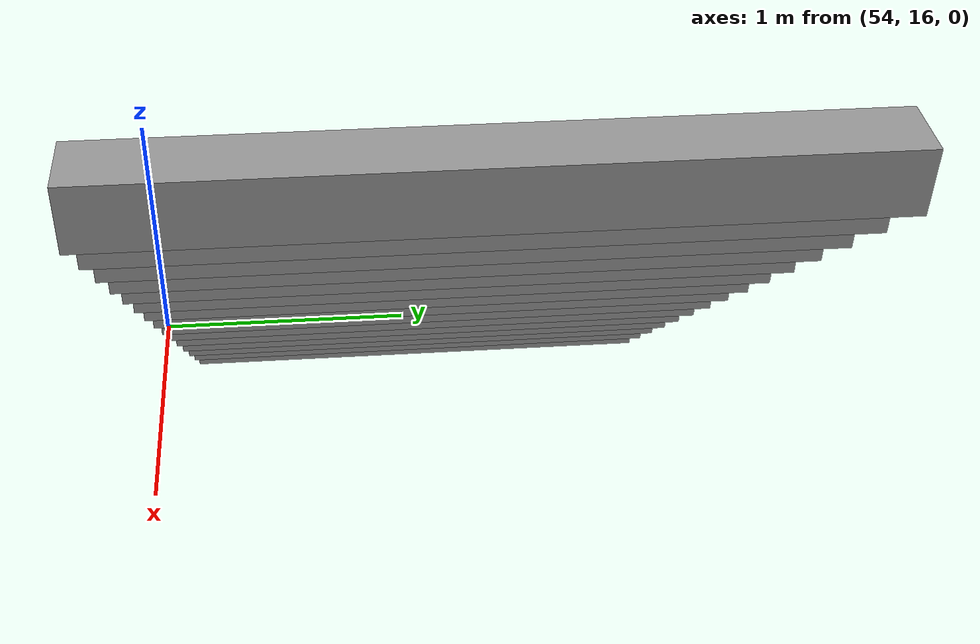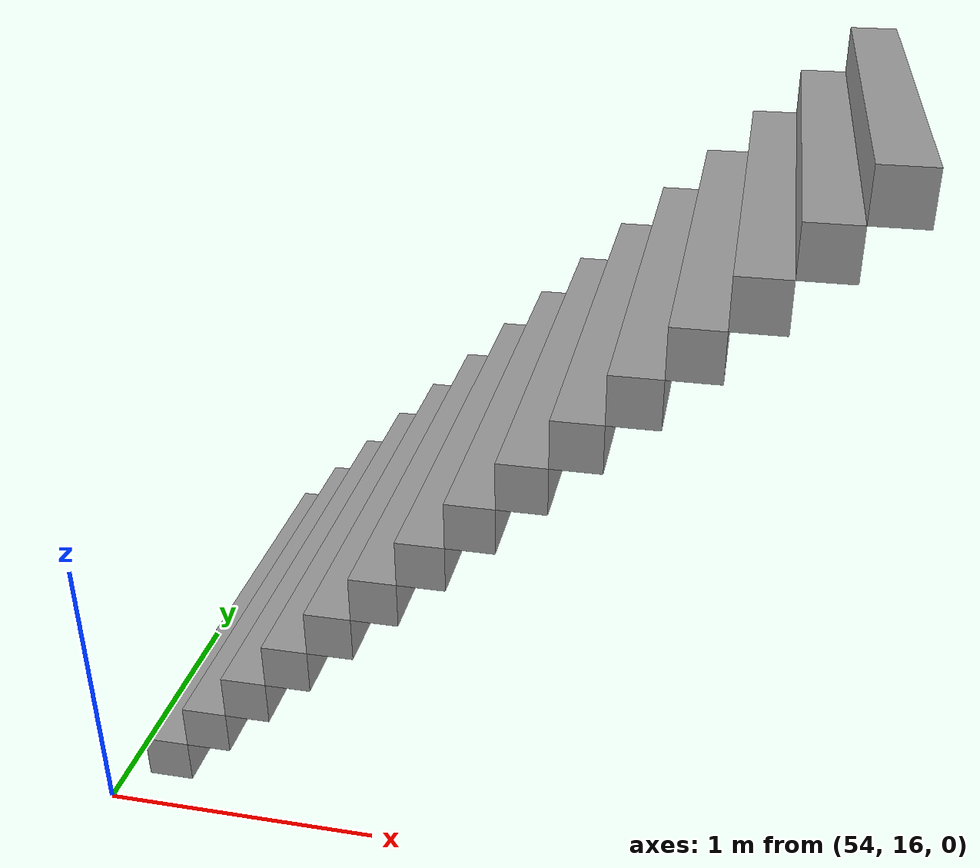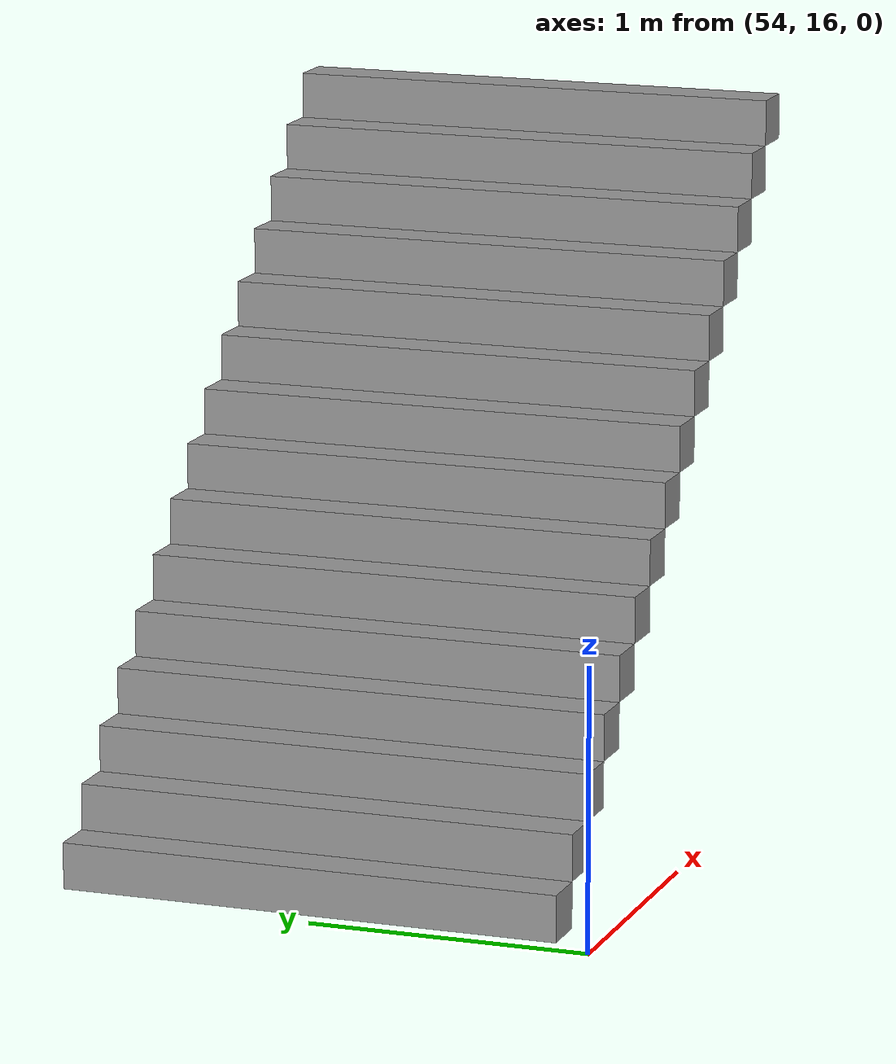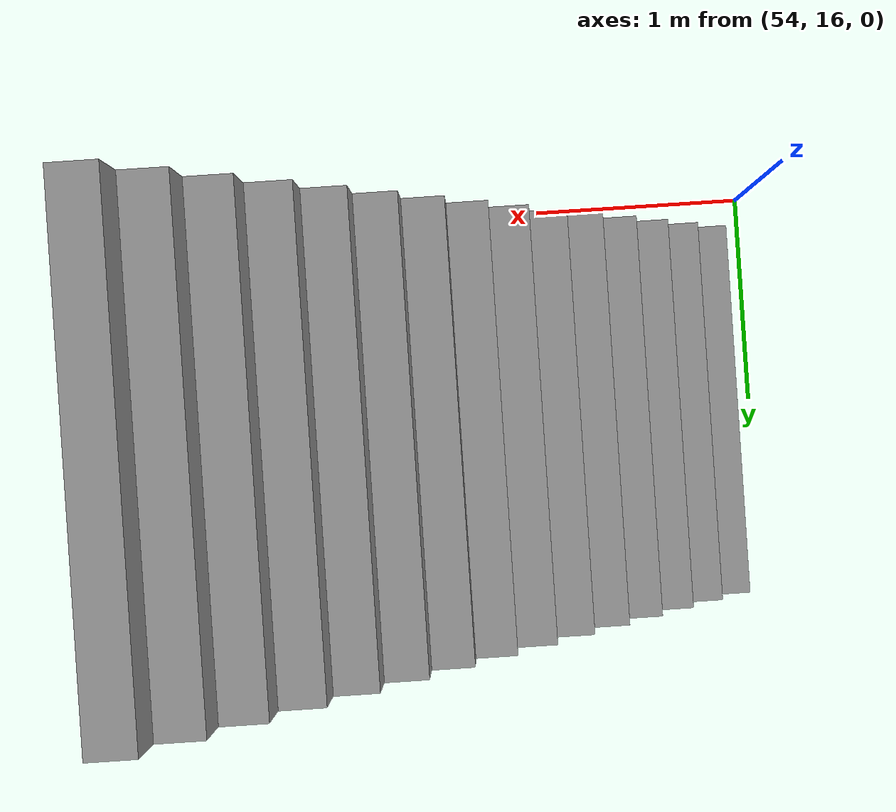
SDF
<sdf version="1.6">
 <model name="draft3">
  <pose>34.2026 -2.81154 0 0 -0 0</pose>
  <link name="Stairs_2">
   <visual name="Stairs_2_Visual_0">
    <pose>19.9679 19.8567 0.083333 0 -0 1.5708</pose>
    <geometry><box><size>1.80606 0.167429 0.166667</size></box></geometry>
    <material>
     <script><uri>file://media/materials/scripts/gazebo.material</uri><name>Gazebo/Grey</name></script>
     <ambient>1 1 1 1</ambient>
    </material>
   </visual>
   <collision name="Stairs_2_Collision_0">
    <geometry><box><size>1.80606 0.167429 0.166667</size></box></geometry>
    <pose>19.9679 19.8567 0.083333 0 -0 1.5708</pose>
   </collision>
   <visual name="Stairs_2_Visual_1">
    <pose>20.1353 19.8567 0.25 0 -0 1.5708</pose>
    <geometry><box><size>1.80606 0.167429 0.166667</size></box></geometry>
    <material>
     <script><uri>file://media/materials/scripts/gazebo.material</uri><name>Gazebo/Grey</name></script>
     <ambient>1 1 1 1</ambient>
    </material>
   </visual>
   <collision name="Stairs_2_Collision_1">
    <geometry><box><size>1.80606 0.167429 0.166667</size></box></geometry>
    <pose>20.1353 19.8567 0.25 0 -0 1.5708</pose>
   </collision>
   <visual name="Stairs_2_Visual_2">
    <pose>20.3027 19.8567 0.416667 0 -0 1.5708</pose>
    <geometry><box><size>1.80606 0.167429 0.166667</size></box></geometry>
    <material>
     <script><uri>file://media/materials/scripts/gazebo.material</uri><name>Gazebo/Grey</name></script>
     <ambient>1 1 1 1</ambient>
    </material>
   </visual>
   <collision name="Stairs_2_Collision_2">
    <geometry><box><size>1.80606 0.167429 0.166667</size></box></geometry>
    <pose>20.3027 19.8567 0.416667 0 -0 1.5708</pose>
   </collision>
   <visual name="Stairs_2_Visual_3">
    <pose>20.4702 19.8567 0.583333 0 -0 1.5708</pose>
    <geometry><box><size>1.80606 0.167429 0.166667</size></box></geometry>
    <material>
     <script><uri>file://media/materials/scripts/gazebo.material</uri><name>Gazebo/Grey</name></script>
     <ambient>1 1 1 1</ambient>
    </material>
   </visual>
   <collision name="Stairs_2_Collision_3">
    <geometry><box><size>1.80606 0.167429 0.166667</size></box></geometry>
    <pose>20.4702 19.8567 0.583333 0 -0 1.5708</pose>
   </collision>
   <visual name="Stairs_2_Visual_4">
    <pose>20.6376 19.8567 0.75 0 -0 1.5708</pose>
    <geometry><box><size>1.80606 0.167429 0.166667</size></box></geometry>
    <material>
     <script><uri>file://media/materials/scripts/gazebo.material</uri><name>Gazebo/Grey</name></script>
     <ambient>1 1 1 1</ambient>
    </material>
   </visual>
   <collision name="Stairs_2_Collision_4">
    <geometry><box><size>1.80606 0.167429 0.166667</size></box></geometry>
    <pose>20.6376 19.8567 0.75 0 -0 1.5708</pose>
   </collision>
   <visual name="Stairs_2_Visual_5">
    <pose>20.805 19.8567 0.916667 0 -0 1.5708</pose>
    <geometry><box><size>1.80606 0.167429 0.166667</size></box></geometry>
    <material>
     <script><uri>file://media/materials/scripts/gazebo.material</uri><name>Gazebo/Grey</name></script>
     <ambient>1 1 1 1</ambient>
    </material>
   </visual>
   <collision name="Stairs_2_Collision_5">
    <geometry><box><size>1.80606 0.167429 0.166667</size></box></geometry>
    <pose>20.805 19.8567 0.916667 0 -0 1.5708</pose>
   </collision>
   <visual name="Stairs_2_Visual_6">
    <pose>20.9725 19.8567 1.08333 0 -0 1.5708</pose>
    <geometry><box><size>1.80606 0.167429 0.166667</size></box></geometry>
    <material>
     <script><uri>file://media/materials/scripts/gazebo.material</uri><name>Gazebo/Grey</name></script>
     <ambient>1 1 1 1</ambient>
    </material>
   </visual>
   <collision name="Stairs_2_Collision_6">
    <geometry><box><size>1.80606 0.167429 0.166667</size></box></geometry>
    <pose>20.9725 19.8567 1.08333 0 -0 1.5708</pose>
   </collision>
   <visual name="Stairs_2_Visual_7">
    <pose>21.1399 19.8567 1.25 0 -0 1.5708</pose>
    <geometry><box><size>1.80606 0.167429 0.166667</size></box></geometry>
    <material>
     <script><uri>file://media/materials/scripts/gazebo.material</uri><name>Gazebo/Grey</name></script>
     <ambient>1 1 1 1</ambient>
    </material>
   </visual>
   <collision name="Stairs_2_Collision_7">
    <geometry><box><size>1.80606 0.167429 0.166667</size></box></geometry>
    <pose>21.1399 19.8567 1.25 0 -0 1.5708</pose>
   </collision>
   <visual name="Stairs_2_Visual_8">
    <pose>21.3073 19.8567 1.41667 0 -0 1.5708</pose>
    <geometry><box><size>1.80606 0.167429 0.166667</size></box></geometry>
    <material>
     <script><uri>file://media/materials/scripts/gazebo.material</uri><name>Gazebo/Grey</name></script>
     <ambient>1 1 1 1</ambient>
    </material>
   </visual>
   <collision name="Stairs_2_Collision_8">
    <geometry><box><size>1.80606 0.167429 0.166667</size></box></geometry>
    <pose>21.3073 19.8567 1.41667 0 -0 1.5708</pose>
   </collision>
   <visual name="Stairs_2_Visual_9">
    <pose>21.4747 19.8567 1.58333 0 -0 1.5708</pose>
    <geometry><box><size>1.80606 0.167429 0.166667</size></box></geometry>
    <material>
     <script><uri>file://media/materials/scripts/gazebo.material</uri><name>Gazebo/Grey</name></script>
     <ambient>1 1 1 1</ambient>
    </material>
   </visual>
   <collision name="Stairs_2_Collision_9">
    <geometry><box><size>1.80606 0.167429 0.166667</size></box></geometry>
    <pose>21.4747 19.8567 1.58333 0 -0 1.5708</pose>
   </collision>
   <visual name="Stairs_2_Visual_10">
    <pose>21.6422 19.8567 1.75 0 -0 1.5708</pose>
    <geometry><box><size>1.80606 0.167429 0.166667</size></box></geometry>
    <material>
     <script><uri>file://media/materials/scripts/gazebo.material</uri><name>Gazebo/Grey</name></script>
     <ambient>1 1 1 1</ambient>
    </material>
   </visual>
   <collision name="Stairs_2_Collision_10">
    <geometry><box><size>1.80606 0.167429 0.166667</size></box></geometry>
    <pose>21.6422 19.8567 1.75 0 -0 1.5708</pose>
   </collision>
   <visual name="Stairs_2_Visual_11">
    <pose>21.8096 19.8567 1.91667 0 -0 1.5708</pose>
    <geometry><box><size>1.80606 0.167429 0.166667</size></box></geometry>
    <material>
     <script><uri>file://media/materials/scripts/gazebo.material</uri><name>Gazebo/Grey</name></script>
     <ambient>1 1 1 1</ambient>
    </material>
   </visual>
   <collision name="Stairs_2_Collision_11">
    <geometry><box><size>1.80606 0.167429 0.166667</size></box></geometry>
    <pose>21.8096 19.8567 1.91667 0 -0 1.5708</pose>
   </collision>
   <visual name="Stairs_2_Visual_12">
    <pose>21.977 19.8567 2.08333 0 -0 1.5708</pose>
    <geometry><box><size>1.80606 0.167429 0.166667</size></box></geometry>
    <material>
     <script><uri>file://media/materials/scripts/gazebo.material</uri><name>Gazebo/Grey</name></script>
     <ambient>1 1 1 1</ambient>
    </material>
   </visual>
   <collision name="Stairs_2_Collision_12">
    <geometry><box><size>1.80606 0.167429 0.166667</size></box></geometry>
    <pose>21.977 19.8567 2.08333 0 -0 1.5708</pose>
   </collision>
   <visual name="Stairs_2_Visual_13">
    <pose>22.1445 19.8567 2.25 0 -0 1.5708</pose>
    <geometry><box><size>1.80606 0.167429 0.166667</size></box></geometry>
    <material>
     <script><uri>file://media/materials/scripts/gazebo.material</uri><name>Gazebo/Grey</name></script>
     <ambient>1 1 1 1</ambient>
    </material>
   </visual>
   <collision name="Stairs_2_Collision_13">
    <geometry><box><size>1.80606 0.167429 0.166667</size></box></geometry>
    <pose>22.1445 19.8567 2.25 0 -0 1.5708</pose>
   </collision>
   <visual name="Stairs_2_Visual_14">
    <pose>22.3119 19.8567 2.41667 0 -0 1.5708</pose>
    <geometry><box><size>1.80606 0.167429 0.166667</size></box></geometry>
    <material>
     <script><uri>file://media/materials/scripts/gazebo.material</uri><name>Gazebo/Grey</name></script>
     <ambient>1 1 1 1</ambient>
    </material>
   </visual>
   <collision name="Stairs_2_Collision_14">
    <geometry><box><size>1.80606 0.167429 0.166667</size></box></geometry>
    <pose>22.3119 19.8567 2.41667 0 -0 1.5708</pose>
   </collision>
  </link>
  <static>1</static>
 </model>
</sdf>
